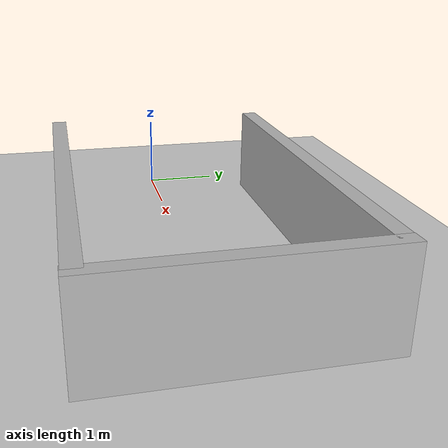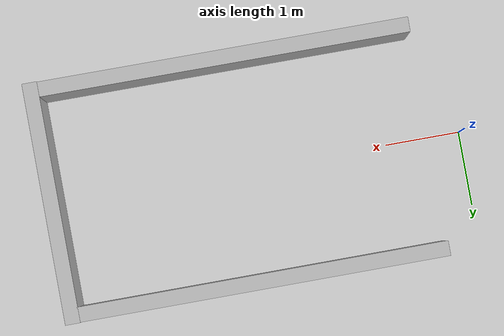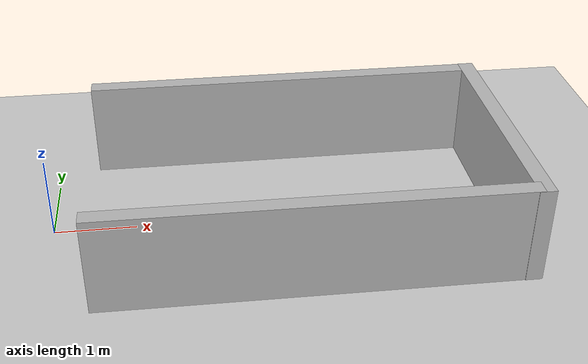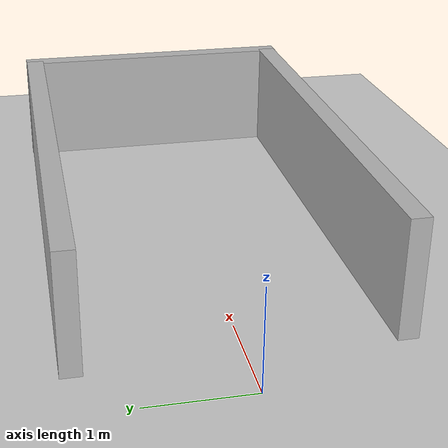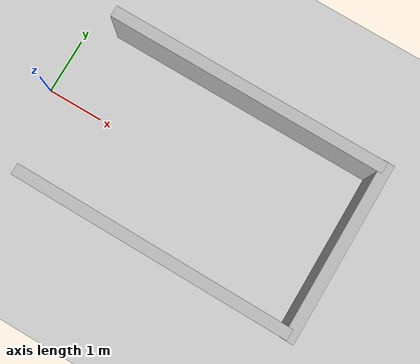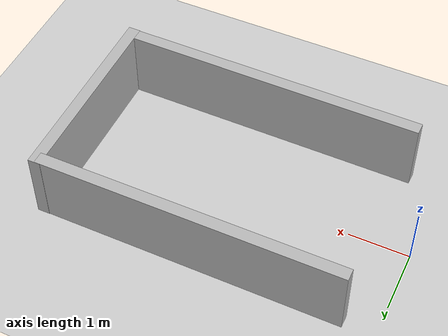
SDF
<?xml version="1.0"?>
<sdf version="1.6">
  <world name="v2-04g-r6-i5-compile-support-maneuver-s5167">
    <gravity>0 0 -9.81</gravity>
    <physics name="v2_deterministic" type="ode">
      <max_step_size>0.002</max_step_size>
      <real_time_update_rate>500</real_time_update_rate>
    </physics>
    <include>
      <uri>model://sun</uri>
    </include>
    <include>
      <uri>model://ground_plane</uri>
    </include>
    <model name="bay-left">
      <static>true</static>
      <pose>3.000405203 1.500569436 0.600000000 0 0 -0.000796255</pose>
      <link name="link">
        <collision name="collision">
          <geometry>
            <box>
              <size>5.000000 0.200000 1.200000</size>
            </box>
          </geometry>
        </collision>
        <visual name="visual">
          <geometry>
            <box>
              <size>5.000000 0.200000 1.200000</size>
            </box>
          </geometry>
        </visual>
      </link>
    </model>
    <model name="bay-right">
      <static>true</static>
      <pose>2.992894035 -1.478678524 0.600000000 0 0 -0.004061922</pose>
      <link name="link">
        <collision name="collision">
          <geometry>
            <box>
              <size>5.000000 0.200000 1.200000</size>
            </box>
          </geometry>
        </collision>
        <visual name="visual">
          <geometry>
            <box>
              <size>5.000000 0.200000 1.200000</size>
            </box>
          </geometry>
        </visual>
      </link>
    </model>
    <model name="bay-back">
      <static>true</static>
      <pose>5.509836646 0.004516626 0.600000000 0 0 0.003379115</pose>
      <link name="link">
        <collision name="collision">
          <geometry>
            <box>
              <size>0.200000 3.200000 1.200000</size>
            </box>
          </geometry>
        </collision>
        <visual name="visual">
          <geometry>
            <box>
              <size>0.200000 3.200000 1.200000</size>
            </box>
          </geometry>
        </visual>
      </link>
    </model>
  </world>
</sdf>
